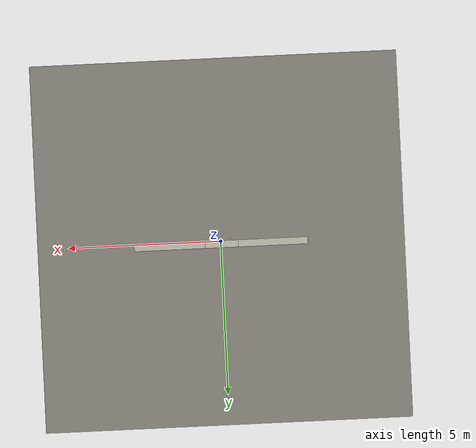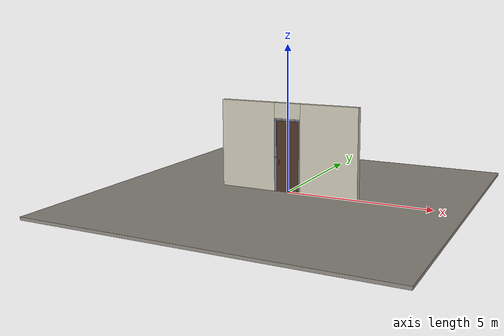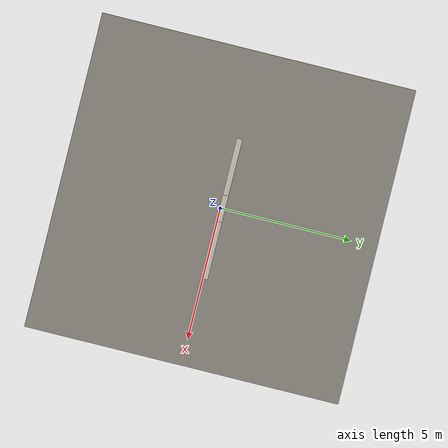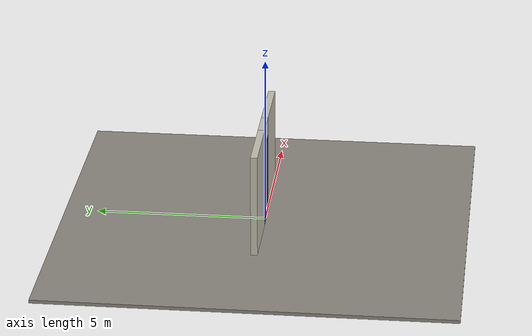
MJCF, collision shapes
<?xml version="1.0" ?>
<mujoco model="db0799_swing_single_minimal">
  <compiler angle="radian" meshdir="../../hardware" texturedir="../../textures" autolimits="true" inertiafromgeom="false"/>
  <option timestep="0.002" integrator="implicitfast" cone="elliptic" impratio="10" noslip_iterations="3">
    <flag multiccd="enable"/>
  </option>
  <size memory="16M"/>
  <default>
    <geom condim="4" solref="0.005 1" solimp="0.95 0.99 0.001"/>
    <joint solreflimit="0.005 1" solimplimit="0.95 0.99 0.001"/>
    <tendon solreflimit="0.005 1"/>
    <equality solref="0.002 1"/>
  </default>
  <visual>
    <headlight ambient="0.4 0.4 0.4" diffuse="0.7 0.7 0.7" specular="0.2 0.2 0.2"/>
    <quality shadowsize="4096"/>
    <map znear="0.01" zfar="60"/>
  </visual>
  <asset>
    <mesh name="pull_1e5d69a91a" file="pull_1e5d69a91a.obj"/>
    <material name="mat_floor" rgba="0.55 0.53 0.5 1" specular="0.2" shininess="0.15" reflectance="0"/>
    <material name="mat_wall" rgba="0.78 0.76 0.7 1" specular="0.2" shininess="0.1" reflectance="0"/>
    <material name="mat_leaf" rgba="0.3 0.2 0.14 1" specular="0.2" shininess="0.44" reflectance="0"/>
    <material name="mat_hinge" rgba="0.65 0.66 0.68 1" specular="0.74" shininess="0.5" reflectance="0.36"/>
    <material name="mat_op_stainless" rgba="0.75 0.76 0.77 1" specular="0.8" shininess="0.65" reflectance="0.4"/>
    <material name="mat_deadbolt" rgba="0.85 0.66 0.3 1" specular="0.8" shininess="0.75" reflectance="0.4"/>
    <material name="mat_frame" rgba="0.45 0.48 0.52 1" specular="0.32" shininess="0.6" reflectance="0.08"/>
    <material name="mat_closer" rgba="0.22 0.17 0.13 1" specular="0.8" shininess="0.6" reflectance="0.4"/>
    <material name="mat_kick" rgba="0.75 0.76 0.77 1" specular="0.8" shininess="0.65" reflectance="0.4"/>
    <material name="mat_wallreader" rgba="0.05 0.05 0.05 1" specular="0.38" shininess="0.3" reflectance="0.12"/>
    <texture name="skybox" type="skybox" builtin="gradient" rgb1="0.6 0.7 0.85" rgb2="0.9 0.92 0.95" width="256" height="256"/>
  </asset>
  <worldbody>
    <light name="sun" pos="1.5 -2.5 4" dir="-0.3 0.5 -0.8" directional="true" diffuse="0.8 0.8 0.8" specular="0.3 0.3 0.3" castshadow="true"/>
    <light name="fill" pos="-1.5 2.5 3" dir="0.3 -0.5 -0.7" directional="true" diffuse="0.35 0.35 0.4" castshadow="false"/>
    <camera name="robot_view" pos="0 -2.851812 2.043887" xyaxes="1 0 0 0 0.26963 0.962964" fovy="52"/>
    <camera name="far_view" pos="0 2.993813 2.043887" xyaxes="-1 0 0 0 -0.26963 0.962964" fovy="52"/>
    <camera name="iso" pos="-2.221337 -2.384162 2.511538" xyaxes="0.741536 -0.670913 0 0.242917 0.268487 0.932151" fovy="46"/>
    <camera name="detail_handle" pos="-0.1205 -0.882 1.32" xyaxes="0.97561 0.219512 0 -0.070934 0.315262 0.94635" fovy="38"/>
    <geom name="floor" type="box" size="6 6 0.05" pos="0 0 -0.05" material="mat_floor" group="0" contype="1" conaffinity="1" friction="0.8 0.005 0.0001" density="2400"/>
    <geom name="wall_left" type="box" size="1.00475 0.1 1.5255" pos="-1.49525 0.071 1.5255" material="mat_wall" group="0" contype="1" conaffinity="1" friction="0.6 0.005 0.0001" density="800"/>
    <geom name="wall_right" type="box" size="1.01975 0.1 1.5255" pos="1.48025 0.071 1.5255" material="mat_wall" group="0" contype="1" conaffinity="1" friction="0.6 0.005 0.0001" density="800"/>
    <geom name="wall_header" type="box" size="0.4755 0.1 0.26" pos="-0.015 0.071 2.791" material="mat_wall" group="0" contype="1" conaffinity="1" friction="0.6 0.005 0.0001" density="800"/>
    <geom name="jamb_hinge" type="box" size="0.025 0.1 1.2255" pos="0.4355 0.071 1.2255" material="mat_frame" group="0" contype="1" conaffinity="1" friction="0.6 0.005 0.0001" density="300"/>
    <geom name="strike_1180_wall_n" type="box" size="0.04 0.08075 0.0155" pos="-0.4505 0.09025 1.18" material="mat_frame" group="0" contype="1" conaffinity="1" friction="0.6 0.005 0.0001" density="300"/>
    <geom name="strike_1180_wall_p" type="box" size="0.04 0.00975 0.0155" pos="-0.4505 -0.01925 1.18" material="mat_frame" group="0" contype="1" conaffinity="1" friction="0.6 0.005 0.0001" density="300"/>
    <geom name="strike_1180_back" type="box" size="0.0253 0.0095 0.0155" pos="-0.4652 0 1.18" material="mat_frame" group="0" contype="1" conaffinity="1" friction="0.6 0.005 0.0001" density="300"/>
    <geom name="jamb_strike_0" type="box" size="0.04 0.1 0.58225" pos="-0.4505 0.071 0.58225" material="mat_frame" group="0" contype="1" conaffinity="1" friction="0.6 0.005 0.0001" density="300"/>
    <geom name="jamb_strike_1" type="box" size="0.04 0.1 0.62775" pos="-0.4505 0.071 1.82325" material="mat_frame" group="0" contype="1" conaffinity="1" friction="0.6 0.005 0.0001" density="300"/>
    <geom name="jamb_head" type="box" size="0.4755 0.1 0.025" pos="-0.015 0.071 2.476" material="mat_frame" group="0" contype="1" conaffinity="1" friction="0.6 0.005 0.0001" density="300"/>
    <geom name="head_stud" type="box" size="0.4755 0.1 0.015" pos="-0.015 0.071 2.516" material="mat_wall" group="0" contype="1" conaffinity="1" friction="0.6 0.005 0.0001" density="500"/>
    <geom name="stop_hinge" type="box" size="0.0055 0.016 1.2255" pos="0.405 0.0385 1.2255" material="mat_frame" group="0" contype="1" conaffinity="1" friction="0.6 0.005 0.0001" density="300"/>
    <geom name="stop_strike" type="box" size="0.0055 0.016 1.2255" pos="-0.405 0.0385 1.2255" material="mat_frame" group="0" contype="1" conaffinity="1" friction="0.6 0.005 0.0001" density="300"/>
    <geom name="stop_head" type="box" size="0.4105 0.016 0.0055" pos="0 0.0385 2.4455" material="mat_frame" group="0" contype="1" conaffinity="1" friction="0.6 0.005 0.0001" density="300"/>
    <site name="approach_point" pos="0 -1.5 0" quat="1 0 0 0" size="0.05" rgba="0.2 0.9 0.2 0.5" group="4"/>
    <site name="goal_point" pos="0 1.5 0" quat="1 0 0 0" size="0.05" rgba="0.2 0.9 0.2 0.5" group="4"/>
    <site name="door_plane_center" pos="0 0 1.2255" quat="1 0 0 0" size="0.02" rgba="0.2 0.9 0.2 0.5" group="4"/>
    <body name="leaf" pos="0.4105 0 0">
      <inertial pos="-0.414157 0 1.225096" mass="62.547361" quat="0.499502 0.499502 0.500498 -0.500498" diaginertia="3.493698566 30.554503322 34.01745558"/>
      <joint name="leaf_hinge" type="hinge" axis="0 0 1" pos="-0.003 -0.029 0" limited="true" range="0 1.570796" damping="10.192359" frictionloss="0.702818" stiffness="13.521804" springref="-2.326613" armature="0.02"/>
      <geom name="leaf_slab" type="box" size="0.4065 0.022 1.219" pos="-0.4095 0 1.228" material="mat_leaf" group="0" contype="1" conaffinity="1" friction="0.4 0.005 0.0001" density="1"/>
      <geom name="leaf_pull_n" type="mesh" mesh="pull_1e5d69a91a" pos="-0.711 -0.022 1.04" quat="0 0 -0.707107 0.707107" material="mat_op_stainless" group="1" contype="0" conaffinity="0" density="3000"/>
      <geom name="leaf_pull_col_n" type="capsule" size="0.0095 0.08" pos="-0.711 -0.082 1.04" material="mat_op_stainless" group="3" contype="1" conaffinity="1" rgba="0.8 0.3 0.3 0.25" friction="0.7 0.01 0.0001" density="3000"/>
      <geom name="leaf_pull_p" type="mesh" mesh="pull_1e5d69a91a" pos="-0.711 0.022 1.04" quat="0 0 0.707107 0.707107" material="mat_op_stainless" group="1" contype="0" conaffinity="0" density="3000"/>
      <geom name="leaf_pull_col_p" type="capsule" size="0.0095 0.08" pos="-0.711 0.082 1.04" material="mat_op_stainless" group="3" contype="1" conaffinity="1" rgba="0.8 0.3 0.3 0.25" friction="0.7 0.01 0.0001" density="3000"/>
      <site name="leaf_pull_grip_n" pos="-0.711 -0.082 1.04" quat="1 0 0 0" size="0.012" rgba="0.2 0.9 0.2 0.5" group="4"/>
      <site name="leaf_pull_grip_p" pos="-0.711 0.082 1.04" quat="1 0 0 0" size="0.012" rgba="0.2 0.9 0.2 0.5" group="4"/>
      <site name="leaf_edge_mid" pos="-0.816 0 1.219" quat="1 0 0 0" size="0.02" rgba="0.2 0.9 0.2 0.5" group="4"/>
    </body>
  </worldbody>
  <sensor>
    <jointpos name="leaf_hinge_pos" joint="leaf_hinge"/>
    <jointvel name="leaf_hinge_vel" joint="leaf_hinge"/>
  </sensor>
</mujoco>
